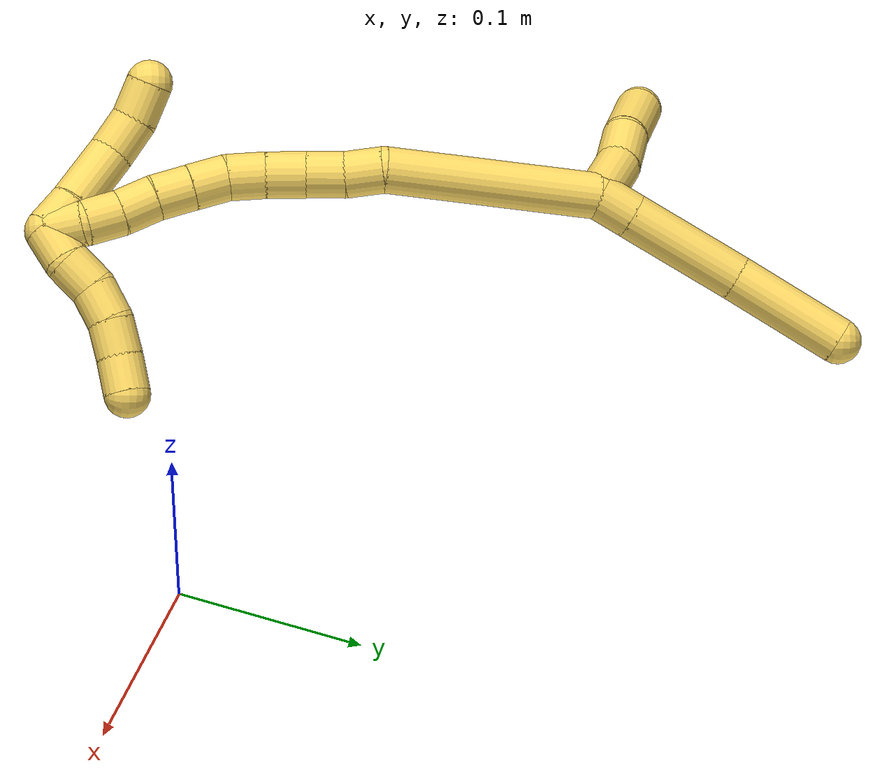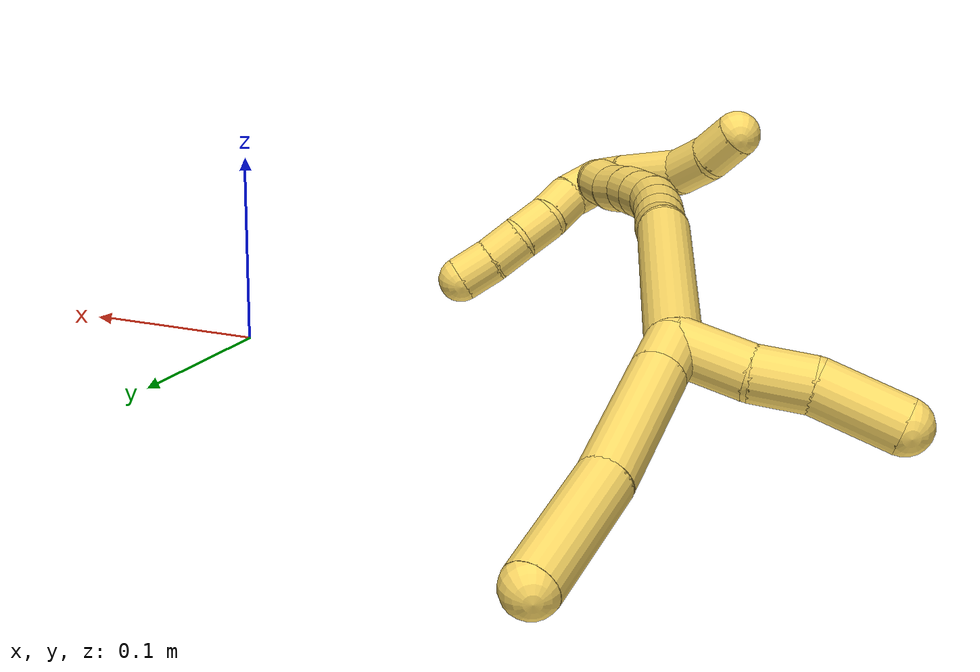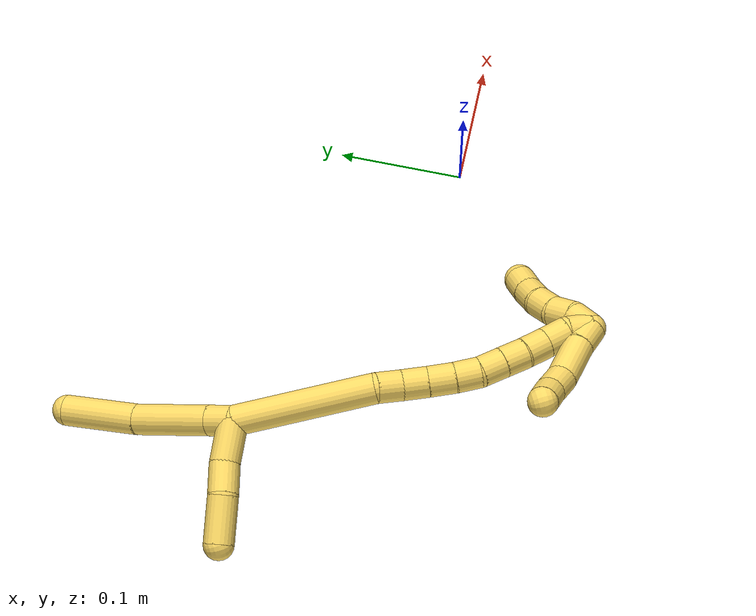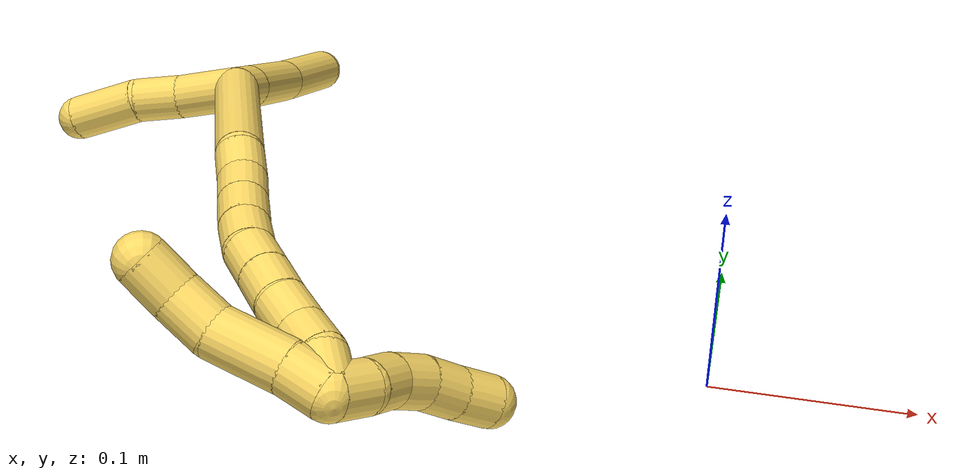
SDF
<sdf version="1.7">
 <world name="default">
  <model name="5">
   <static>0</static>
   <link name="5">
    <collision name="collision-cylinder-e_1_2_8">
     <pose>-0.004715 0.002525 0.008862 -0.277527 -0.472958 0.067288</pose>
     <geometry><cylinder><radius>0.0125</radius><length>0.020701</length></cylinder></geometry>
     <surface>
      <friction><ode><mu>1.16</mu><mu2>1.16</mu2><slip1>0</slip1><slip2>0</slip2></ode></friction>
      <contact><ode><kp>1e+06</kp><kd>1</kd><max_vel>0</max_vel><min_depth>0.001</min_depth></ode></contact>
     </surface>
    </collision>
    <visual name="visual-cylinder-e_1_2_8">
     <pose>-0.004715 0.002525 0.008862 -0.277527 -0.472958 0.067288</pose>
     <geometry><cylinder><radius>0.0125</radius><length>0.020701</length></cylinder></geometry>
     <material><ambient>1 0.858824 0.4 1</ambient></material>
    </visual>
    <collision name="collision-cylinder-e_2_8_9">
     <pose>-0.024202 0.012934 0.045692 -0.274791 -0.470323 0.066232</pose>
     <geometry><cylinder><radius>0.0125</radius><length>0.065194</length></cylinder></geometry>
     <surface>
      <friction><ode><mu>1.16</mu><mu2>1.16</mu2><slip1>0</slip1><slip2>0</slip2></ode></friction>
      <contact><ode><kp>1e+06</kp><kd>1</kd><max_vel>0</max_vel><min_depth>0.001</min_depth></ode></contact>
     </surface>
    </collision>
    <visual name="visual-cylinder-e_2_8_9">
     <pose>-0.024202 0.012934 0.045692 -0.274791 -0.470323 0.066232</pose>
     <geometry><cylinder><radius>0.0125</radius><length>0.065194</length></cylinder></geometry>
     <material><ambient>1 0.858824 0.4 1</ambient></material>
    </visual>
    <collision name="collision-cylinder-e_3_9_6">
     <pose>-0.052897 0.031758 0.100377 -0.388616 -0.449339 0.089884</pose>
     <geometry><cylinder><radius>0.0125</radius><length>0.064104</length></cylinder></geometry>
     <surface>
      <friction><ode><mu>1.16</mu><mu2>1.16</mu2><slip1>0</slip1><slip2>0</slip2></ode></friction>
      <contact><ode><kp>1e+06</kp><kd>1</kd><max_vel>0</max_vel><min_depth>0.001</min_depth></ode></contact>
     </surface>
    </collision>
    <visual name="visual-cylinder-e_3_9_6">
     <pose>-0.052897 0.031758 0.100377 -0.388616 -0.449339 0.089884</pose>
     <geometry><cylinder><radius>0.0125</radius><length>0.064104</length></cylinder></geometry>
     <material><ambient>1 0.858824 0.4 1</ambient></material>
    </visual>
    <collision name="collision-cylinder-e_1_2_10">
     <pose>0.003557 -0.015091 0.00779 1.09425 0.206436 0.126033</pose>
     <geometry><cylinder><radius>0.0125</radius><length>0.034703</length></cylinder></geometry>
     <surface>
      <friction><ode><mu>1.16</mu><mu2>1.16</mu2><slip1>0</slip1><slip2>0</slip2></ode></friction>
      <contact><ode><kp>1e+06</kp><kd>1</kd><max_vel>0</max_vel><min_depth>0.001</min_depth></ode></contact>
     </surface>
    </collision>
    <visual name="visual-cylinder-e_1_2_10">
     <pose>0.003557 -0.015091 0.00779 1.09425 0.206436 0.126033</pose>
     <geometry><cylinder><radius>0.0125</radius><length>0.034703</length></cylinder></geometry>
     <material><ambient>1 0.858824 0.4 1</ambient></material>
    </visual>
    <collision name="collision-cylinder-e_2_10_11">
     <pose>0.011594 -0.041875 0.019578 1.2414 0.347885 0.249957</pose>
     <geometry><cylinder><radius>0.0125</radius><length>0.02629</length></cylinder></geometry>
     <surface>
      <friction><ode><mu>1.16</mu><mu2>1.16</mu2><slip1>0</slip1><slip2>0</slip2></ode></friction>
      <contact><ode><kp>1e+06</kp><kd>1</kd><max_vel>0</max_vel><min_depth>0.001</min_depth></ode></contact>
     </surface>
    </collision>
    <visual name="visual-cylinder-e_2_10_11">
     <pose>0.011594 -0.041875 0.019578 1.2414 0.347885 0.249957</pose>
     <geometry><cylinder><radius>0.0125</radius><length>0.02629</length></cylinder></geometry>
     <material><ambient>1 0.858824 0.4 1</ambient></material>
    </visual>
    <collision name="collision-cylinder-e_3_11_5">
     <pose>0.01822 -0.071636 0.0306 1.2 0.110167 0.07541</pose>
     <geometry><cylinder><radius>0.0125</radius><length>0.039008</length></cylinder></geometry>
     <surface>
      <friction><ode><mu>1.16</mu><mu2>1.16</mu2><slip1>0</slip1><slip2>0</slip2></ode></friction>
      <contact><ode><kp>1e+06</kp><kd>1</kd><max_vel>0</max_vel><min_depth>0.001</min_depth></ode></contact>
     </surface>
    </collision>
    <visual name="visual-cylinder-e_3_11_5">
     <pose>0.01822 -0.071636 0.0306 1.2 0.110167 0.07541</pose>
     <geometry><cylinder><radius>0.0125</radius><length>0.039008</length></cylinder></geometry>
     <material><ambient>1 0.858824 0.4 1</ambient></material>
    </visual>
    <collision name="collision-cylinder-e_1_2_12">
     <pose>0.006146 -0.003039 -0.057709 3.08898 0.10596 2.22039</pose>
     <geometry><cylinder><radius>0.0125</radius><length>0.116229</length></cylinder></geometry>
     <surface>
      <friction><ode><mu>1.16</mu><mu2>1.16</mu2><slip1>0</slip1><slip2>0</slip2></ode></friction>
      <contact><ode><kp>1e+06</kp><kd>1</kd><max_vel>0</max_vel><min_depth>0.001</min_depth></ode></contact>
     </surface>
    </collision>
    <visual name="visual-cylinder-e_1_2_12">
     <pose>0.006146 -0.003039 -0.057709 3.08898 0.10596 2.22039</pose>
     <geometry><cylinder><radius>0.0125</radius><length>0.116229</length></cylinder></geometry>
     <material><ambient>1 0.858824 0.4 1</ambient></material>
    </visual>
    <collision name="collision-cylinder-e_2_12_13">
     <pose>0.010216 -0.007912 -0.125473 2.96121 -0.200406 -1.6765</pose>
     <geometry><cylinder><radius>0.0125</radius><length>0.020861</length></cylinder></geometry>
     <surface>
      <friction><ode><mu>1.16</mu><mu2>1.16</mu2><slip1>0</slip1><slip2>0</slip2></ode></friction>
      <contact><ode><kp>1e+06</kp><kd>1</kd><max_vel>0</max_vel><min_depth>0.001</min_depth></ode></contact>
     </surface>
    </collision>
    <visual name="visual-cylinder-e_2_12_13">
     <pose>0.010216 -0.007912 -0.125473 2.96121 -0.200406 -1.6765</pose>
     <geometry><cylinder><radius>0.0125</radius><length>0.020861</length></cylinder></geometry>
     <material><ambient>1 0.858824 0.4 1</ambient></material>
    </visual>
    <collision name="collision-cylinder-e_3_13_14">
     <pose>0.007571 -0.011364 -0.14581 2.98552 -0.054602 -0.671965</pose>
     <geometry><cylinder><radius>0.0125</radius><length>0.020847</length></cylinder></geometry>
     <surface>
      <friction><ode><mu>1.16</mu><mu2>1.16</mu2><slip1>0</slip1><slip2>0</slip2></ode></friction>
      <contact><ode><kp>1e+06</kp><kd>1</kd><max_vel>0</max_vel><min_depth>0.001</min_depth></ode></contact>
     </surface>
    </collision>
    <visual name="visual-cylinder-e_3_13_14">
     <pose>0.007571 -0.011364 -0.14581 2.98552 -0.054602 -0.671965</pose>
     <geometry><cylinder><radius>0.0125</radius><length>0.020847</length></cylinder></geometry>
     <material><ambient>1 0.858824 0.4 1</ambient></material>
    </visual>
    <collision name="collision-cylinder-e_4_14_15">
     <pose>0.006345 -0.014434 -0.166783 3.00653 -0.06084 -0.845566</pose>
     <geometry><cylinder><radius>0.0125</radius><length>0.02162</length></cylinder></geometry>
     <surface>
      <friction><ode><mu>1.16</mu><mu2>1.16</mu2><slip1>0</slip1><slip2>0</slip2></ode></friction>
      <contact><ode><kp>1e+06</kp><kd>1</kd><max_vel>0</max_vel><min_depth>0.001</min_depth></ode></contact>
     </surface>
    </collision>
    <visual name="visual-cylinder-e_4_14_15">
     <pose>0.006345 -0.014434 -0.166783 3.00653 -0.06084 -0.845566</pose>
     <geometry><cylinder><radius>0.0125</radius><length>0.02162</length></cylinder></geometry>
     <material><ambient>1 0.858824 0.4 1</ambient></material>
    </visual>
    <collision name="collision-cylinder-e_5_15_16">
     <pose>0.004748 -0.016593 -0.187628 3.07217 -0.092042 -1.8495</pose>
     <geometry><cylinder><radius>0.0125</radius><length>0.020442</length></cylinder></geometry>
     <surface>
      <friction><ode><mu>1.16</mu><mu2>1.16</mu2><slip1>0</slip1><slip2>0</slip2></ode></friction>
      <contact><ode><kp>1e+06</kp><kd>1</kd><max_vel>0</max_vel><min_depth>0.001</min_depth></ode></contact>
     </surface>
    </collision>
    <visual name="visual-cylinder-e_5_15_16">
     <pose>0.004748 -0.016593 -0.187628 3.07217 -0.092042 -1.8495</pose>
     <geometry><cylinder><radius>0.0125</radius><length>0.020442</length></cylinder></geometry>
     <material><ambient>1 0.858824 0.4 1</ambient></material>
    </visual>
    <collision name="collision-cylinder-e_6_16_17">
     <pose>0.001331 -0.016232 -0.20741 -3.03123 -0.250407 2.31449</pose>
     <geometry><cylinder><radius>0.0125</radius><length>0.02</length></cylinder></geometry>
     <surface>
      <friction><ode><mu>1.16</mu><mu2>1.16</mu2><slip1>0</slip1><slip2>0</slip2></ode></friction>
      <contact><ode><kp>1e+06</kp><kd>1</kd><max_vel>0</max_vel><min_depth>0.001</min_depth></ode></contact>
     </surface>
    </collision>
    <visual name="visual-cylinder-e_6_16_17">
     <pose>0.001331 -0.016232 -0.20741 -3.03123 -0.250407 2.31449</pose>
     <geometry><cylinder><radius>0.0125</radius><length>0.02</length></cylinder></geometry>
     <material><ambient>1 0.858824 0.4 1</ambient></material>
    </visual>
    <collision name="collision-cylinder-e_7_17_18">
     <pose>-0.003746 -0.014152 -0.226643 -3.03653 -0.262883 2.38454</pose>
     <geometry><cylinder><radius>0.0125</radius><length>0.020001</length></cylinder></geometry>
     <surface>
      <friction><ode><mu>1.16</mu><mu2>1.16</mu2><slip1>0</slip1><slip2>0</slip2></ode></friction>
      <contact><ode><kp>1e+06</kp><kd>1</kd><max_vel>0</max_vel><min_depth>0.001</min_depth></ode></contact>
     </surface>
    </collision>
    <visual name="visual-cylinder-e_7_17_18">
     <pose>-0.003746 -0.014152 -0.226643 -3.03653 -0.262883 2.38454</pose>
     <geometry><cylinder><radius>0.0125</radius><length>0.020001</length></cylinder></geometry>
     <material><ambient>1 0.858824 0.4 1</ambient></material>
    </visual>
    <collision name="collision-cylinder-e_8_18_19">
     <pose>-0.01005 -0.011678 -0.245419 -2.98362 -0.379534 2.35983</pose>
     <geometry><cylinder><radius>0.0125</radius><length>0.02</length></cylinder></geometry>
     <surface>
      <friction><ode><mu>1.16</mu><mu2>1.16</mu2><slip1>0</slip1><slip2>0</slip2></ode></friction>
      <contact><ode><kp>1e+06</kp><kd>1</kd><max_vel>0</max_vel><min_depth>0.001</min_depth></ode></contact>
     </surface>
    </collision>
    <visual name="visual-cylinder-e_8_18_19">
     <pose>-0.01005 -0.011678 -0.245419 -2.98362 -0.379534 2.35983</pose>
     <geometry><cylinder><radius>0.0125</radius><length>0.02</length></cylinder></geometry>
     <material><ambient>1 0.858824 0.4 1</ambient></material>
    </visual>
    <collision name="collision-cylinder-e_9_19_20">
     <pose>-0.016004 -0.008512 -0.264186 -2.96564 -0.226856 1.82389</pose>
     <geometry><cylinder><radius>0.0125</radius><length>0.020001</length></cylinder></geometry>
     <surface>
      <friction><ode><mu>1.16</mu><mu2>1.16</mu2><slip1>0</slip1><slip2>0</slip2></ode></friction>
      <contact><ode><kp>1e+06</kp><kd>1</kd><max_vel>0</max_vel><min_depth>0.001</min_depth></ode></contact>
     </surface>
    </collision>
    <visual name="visual-cylinder-e_9_19_20">
     <pose>-0.016004 -0.008512 -0.264186 -2.96564 -0.226856 1.82389</pose>
     <geometry><cylinder><radius>0.0125</radius><length>0.020001</length></cylinder></geometry>
     <material><ambient>1 0.858824 0.4 1</ambient></material>
    </visual>
    <collision name="collision-cylinder-e_10_20_1">
     <pose>-0.021012 -0.008314 -0.283272 2.98408 -0.27951 -2.11904</pose>
     <geometry><cylinder><radius>0.0125</radius><length>0.02</length></cylinder></geometry>
     <surface>
      <friction><ode><mu>1.16</mu><mu2>1.16</mu2><slip1>0</slip1><slip2>0</slip2></ode></friction>
      <contact><ode><kp>1e+06</kp><kd>1</kd><max_vel>0</max_vel><min_depth>0.001</min_depth></ode></contact>
     </surface>
    </collision>
    <visual name="visual-cylinder-e_10_20_1">
     <pose>-0.021012 -0.008314 -0.283272 2.98408 -0.27951 -2.11904</pose>
     <geometry><cylinder><radius>0.0125</radius><length>0.02</length></cylinder></geometry>
     <material><ambient>1 0.858824 0.4 1</ambient></material>
    </visual>
    <collision name="collision-cylinder-e_1_1_21">
     <pose>-0.017727 -0.014564 -0.286067 0.616089 0.634735 0.208265</pose>
     <geometry><cylinder><radius>0.0125</radius><length>0.020386</length></cylinder></geometry>
     <surface>
      <friction><ode><mu>1.16</mu><mu2>1.16</mu2><slip1>0</slip1><slip2>0</slip2></ode></friction>
      <contact><ode><kp>1e+06</kp><kd>1</kd><max_vel>0</max_vel><min_depth>0.001</min_depth></ode></contact>
     </surface>
    </collision>
    <visual name="visual-cylinder-e_1_1_21">
     <pose>-0.017727 -0.014564 -0.286067 0.616089 0.634735 0.208265</pose>
     <geometry><cylinder><radius>0.0125</radius><length>0.020386</length></cylinder></geometry>
     <material><ambient>1 0.858824 0.4 1</ambient></material>
    </visual>
    <collision name="collision-cylinder-e_2_21_22">
     <pose>-0.001199 -0.029456 -0.268666 0.758854 0.61794 0.253193</pose>
     <geometry><cylinder><radius>0.0125</radius><length>0.03619</length></cylinder></geometry>
     <surface>
      <friction><ode><mu>1.16</mu><mu2>1.16</mu2><slip1>0</slip1><slip2>0</slip2></ode></friction>
      <contact><ode><kp>1e+06</kp><kd>1</kd><max_vel>0</max_vel><min_depth>0.001</min_depth></ode></contact>
     </surface>
    </collision>
    <visual name="visual-cylinder-e_2_21_22">
     <pose>-0.001199 -0.029456 -0.268666 0.758854 0.61794 0.253193</pose>
     <geometry><cylinder><radius>0.0125</radius><length>0.03619</length></cylinder></geometry>
     <material><ambient>1 0.858824 0.4 1</ambient></material>
    </visual>
    <collision name="collision-cylinder-e_3_22_23">
     <pose>0.017796 -0.042956 -0.251608 0.485247 0.869651 0.22891</pose>
     <geometry><cylinder><radius>0.0125</radius><length>0.022277</length></cylinder></geometry>
     <surface>
      <friction><ode><mu>1.16</mu><mu2>1.16</mu2><slip1>0</slip1><slip2>0</slip2></ode></friction>
      <contact><ode><kp>1e+06</kp><kd>1</kd><max_vel>0</max_vel><min_depth>0.001</min_depth></ode></contact>
     </surface>
    </collision>
    <visual name="visual-cylinder-e_3_22_23">
     <pose>0.017796 -0.042956 -0.251608 0.485247 0.869651 0.22891</pose>
     <geometry><cylinder><radius>0.0125</radius><length>0.022277</length></cylinder></geometry>
     <material><ambient>1 0.858824 0.4 1</ambient></material>
    </visual>
    <collision name="collision-cylinder-e_4_23_4">
     <pose>0.035813 -0.048652 -0.241262 0.531274 1.11778 0.337074</pose>
     <geometry><cylinder><radius>0.0125</radius><length>0.021147</length></cylinder></geometry>
     <surface>
      <friction><ode><mu>1.16</mu><mu2>1.16</mu2><slip1>0</slip1><slip2>0</slip2></ode></friction>
      <contact><ode><kp>1e+06</kp><kd>1</kd><max_vel>0</max_vel><min_depth>0.001</min_depth></ode></contact>
     </surface>
    </collision>
    <visual name="visual-cylinder-e_4_23_4">
     <pose>0.035813 -0.048652 -0.241262 0.531274 1.11778 0.337074</pose>
     <geometry><cylinder><radius>0.0125</radius><length>0.021147</length></cylinder></geometry>
     <material><ambient>1 0.858824 0.4 1</ambient></material>
    </visual>
    <collision name="collision-cylinder-e_1_1_24">
     <pose>-0.030047 -0.003611 -0.288071 -0.92355 -0.678469 0.34768</pose>
     <geometry><cylinder><radius>0.0125</radius><length>0.02</length></cylinder></geometry>
     <surface>
      <friction><ode><mu>1.16</mu><mu2>1.16</mu2><slip1>0</slip1><slip2>0</slip2></ode></friction>
      <contact><ode><kp>1e+06</kp><kd>1</kd><max_vel>0</max_vel><min_depth>0.001</min_depth></ode></contact>
     </surface>
    </collision>
    <visual name="visual-cylinder-e_1_1_24">
     <pose>-0.030047 -0.003611 -0.288071 -0.92355 -0.678469 0.34768</pose>
     <geometry><cylinder><radius>0.0125</radius><length>0.02</length></cylinder></geometry>
     <material><ambient>1 0.858824 0.4 1</ambient></material>
    </visual>
    <collision name="collision-cylinder-e_2_24_25">
     <pose>-0.042435 0.006704 -0.276609 -0.545178 -0.657597 0.190179</pose>
     <geometry><cylinder><radius>0.0125</radius><length>0.02</length></cylinder></geometry>
     <surface>
      <friction><ode><mu>1.16</mu><mu2>1.16</mu2><slip1>0</slip1><slip2>0</slip2></ode></friction>
      <contact><ode><kp>1e+06</kp><kd>1</kd><max_vel>0</max_vel><min_depth>0.001</min_depth></ode></contact>
     </surface>
    </collision>
    <visual name="visual-cylinder-e_2_24_25">
     <pose>-0.042435 0.006704 -0.276609 -0.545178 -0.657597 0.190179</pose>
     <geometry><cylinder><radius>0.0125</radius><length>0.02</length></cylinder></geometry>
     <material><ambient>1 0.858824 0.4 1</ambient></material>
    </visual>
    <collision name="collision-cylinder-e_3_25_26">
     <pose>-0.055962 0.015925 -0.265501 -0.86722 -0.835285 0.405269</pose>
     <geometry><cylinder><radius>0.0125</radius><length>0.02</length></cylinder></geometry>
     <surface>
      <friction><ode><mu>1.16</mu><mu2>1.16</mu2><slip1>0</slip1><slip2>0</slip2></ode></friction>
      <contact><ode><kp>1e+06</kp><kd>1</kd><max_vel>0</max_vel><min_depth>0.001</min_depth></ode></contact>
     </surface>
    </collision>
    <visual name="visual-cylinder-e_3_25_26">
     <pose>-0.055962 0.015925 -0.265501 -0.86722 -0.835285 0.405269</pose>
     <geometry><cylinder><radius>0.0125</radius><length>0.02</length></cylinder></geometry>
     <material><ambient>1 0.858824 0.4 1</ambient></material>
    </visual>
    <collision name="collision-cylinder-e_4_26_27">
     <pose>-0.071899 0.025745 -0.25887 -1.11776 -1.02021 0.673178</pose>
     <geometry><cylinder><radius>0.0125</radius><length>0.02</length></cylinder></geometry>
     <surface>
      <friction><ode><mu>1.16</mu><mu2>1.16</mu2><slip1>0</slip1><slip2>0</slip2></ode></friction>
      <contact><ode><kp>1e+06</kp><kd>1</kd><max_vel>0</max_vel><min_depth>0.001</min_depth></ode></contact>
     </surface>
    </collision>
    <visual name="visual-cylinder-e_4_26_27">
     <pose>-0.071899 0.025745 -0.25887 -1.11776 -1.02021 0.673178</pose>
     <geometry><cylinder><radius>0.0125</radius><length>0.02</length></cylinder></geometry>
     <material><ambient>1 0.858824 0.4 1</ambient></material>
    </visual>
    <collision name="collision-cylinder-e_5_27_3">
     <pose>-0.088635 0.035896 -0.254887 -1.2694 -0.96384 0.735273</pose>
     <geometry><cylinder><radius>0.0125</radius><length>0.02</length></cylinder></geometry>
     <surface>
      <friction><ode><mu>1.16</mu><mu2>1.16</mu2><slip1>0</slip1><slip2>0</slip2></ode></friction>
      <contact><ode><kp>1e+06</kp><kd>1</kd><max_vel>0</max_vel><min_depth>0.001</min_depth></ode></contact>
     </surface>
    </collision>
    <visual name="visual-cylinder-e_5_27_3">
     <pose>-0.088635 0.035896 -0.254887 -1.2694 -0.96384 0.735273</pose>
     <geometry><cylinder><radius>0.0125</radius><length>0.02</length></cylinder></geometry>
     <material><ambient>1 0.858824 0.4 1</ambient></material>
    </visual>
    <collision name="collision-sphere-3">
     <pose>-0.096849 0.041342 -0.253194 0 -0 0</pose>
     <geometry><sphere><radius>0.0125</radius></sphere></geometry>
     <surface>
      <friction><ode><mu>1.16</mu><mu2>1.16</mu2><slip1>0</slip1><slip2>0</slip2></ode></friction>
      <contact><ode><kp>1e+06</kp><kd>1</kd><max_vel>0</max_vel><min_depth>0.001</min_depth></ode></contact>
     </surface>
    </collision>
    <visual name="visual-sphere-3">
     <pose>-0.096849 0.041342 -0.253194 0 -0 0</pose>
     <geometry><sphere><radius>0.0125</radius></sphere></geometry>
     <material><ambient>1 0.858824 0.4 1</ambient></material>
    </visual>
    <collision name="collision-sphere-27">
     <pose>-0.080421 0.030449 -0.25658 0 -0 0</pose>
     <geometry><sphere><radius>0.0125</radius></sphere></geometry>
     <surface>
      <friction><ode><mu>1.16</mu><mu2>1.16</mu2><slip1>0</slip1><slip2>0</slip2></ode></friction>
      <contact><ode><kp>1e+06</kp><kd>1</kd><max_vel>0</max_vel><min_depth>0.001</min_depth></ode></contact>
     </surface>
    </collision>
    <visual name="visual-sphere-27">
     <pose>-0.080421 0.030449 -0.25658 0 -0 0</pose>
     <geometry><sphere><radius>0.0125</radius></sphere></geometry>
     <material><ambient>1 0.858824 0.4 1</ambient></material>
    </visual>
    <collision name="collision-sphere-26">
     <pose>-0.063377 0.021041 -0.26116 0 -0 0</pose>
     <geometry><sphere><radius>0.0125</radius></sphere></geometry>
     <surface>
      <friction><ode><mu>1.16</mu><mu2>1.16</mu2><slip1>0</slip1><slip2>0</slip2></ode></friction>
      <contact><ode><kp>1e+06</kp><kd>1</kd><max_vel>0</max_vel><min_depth>0.001</min_depth></ode></contact>
     </surface>
    </collision>
    <visual name="visual-sphere-26">
     <pose>-0.063377 0.021041 -0.26116 0 -0 0</pose>
     <geometry><sphere><radius>0.0125</radius></sphere></geometry>
     <material><ambient>1 0.858824 0.4 1</ambient></material>
    </visual>
    <collision name="collision-sphere-25">
     <pose>-0.048547 0.010808 -0.269842 0 -0 0</pose>
     <geometry><sphere><radius>0.0125</radius></sphere></geometry>
     <surface>
      <friction><ode><mu>1.16</mu><mu2>1.16</mu2><slip1>0</slip1><slip2>0</slip2></ode></friction>
      <contact><ode><kp>1e+06</kp><kd>1</kd><max_vel>0</max_vel><min_depth>0.001</min_depth></ode></contact>
     </surface>
    </collision>
    <visual name="visual-sphere-25">
     <pose>-0.048547 0.010808 -0.269842 0 -0 0</pose>
     <geometry><sphere><radius>0.0125</radius></sphere></geometry>
     <material><ambient>1 0.858824 0.4 1</ambient></material>
    </visual>
    <collision name="collision-sphere-24">
     <pose>-0.036323 0.0026 -0.283376 0 -0 0</pose>
     <geometry><sphere><radius>0.0125</radius></sphere></geometry>
     <surface>
      <friction><ode><mu>1.16</mu><mu2>1.16</mu2><slip1>0</slip1><slip2>0</slip2></ode></friction>
      <contact><ode><kp>1e+06</kp><kd>1</kd><max_vel>0</max_vel><min_depth>0.001</min_depth></ode></contact>
     </surface>
    </collision>
    <visual name="visual-sphere-24">
     <pose>-0.036323 0.0026 -0.283376 0 -0 0</pose>
     <geometry><sphere><radius>0.0125</radius></sphere></geometry>
     <material><ambient>1 0.858824 0.4 1</ambient></material>
    </visual>
    <collision name="collision-sphere-4">
     <pose>0.04532 -0.050996 -0.237272 0 -0 0</pose>
     <geometry><sphere><radius>0.0125</radius></sphere></geometry>
     <surface>
      <friction><ode><mu>1.16</mu><mu2>1.16</mu2><slip1>0</slip1><slip2>0</slip2></ode></friction>
      <contact><ode><kp>1e+06</kp><kd>1</kd><max_vel>0</max_vel><min_depth>0.001</min_depth></ode></contact>
     </surface>
    </collision>
    <visual name="visual-sphere-4">
     <pose>0.04532 -0.050996 -0.237272 0 -0 0</pose>
     <geometry><sphere><radius>0.0125</radius></sphere></geometry>
     <material><ambient>1 0.858824 0.4 1</ambient></material>
    </visual>
    <collision name="collision-sphere-23">
     <pose>0.026307 -0.046307 -0.245252 0 -0 0</pose>
     <geometry><sphere><radius>0.0125</radius></sphere></geometry>
     <surface>
      <friction><ode><mu>1.16</mu><mu2>1.16</mu2><slip1>0</slip1><slip2>0</slip2></ode></friction>
      <contact><ode><kp>1e+06</kp><kd>1</kd><max_vel>0</max_vel><min_depth>0.001</min_depth></ode></contact>
     </surface>
    </collision>
    <visual name="visual-sphere-23">
     <pose>0.026307 -0.046307 -0.245252 0 -0 0</pose>
     <geometry><sphere><radius>0.0125</radius></sphere></geometry>
     <material><ambient>1 0.858824 0.4 1</ambient></material>
    </visual>
    <collision name="collision-sphere-22">
     <pose>0.009285 -0.039604 -0.257964 0 -0 0</pose>
     <geometry><sphere><radius>0.0125</radius></sphere></geometry>
     <surface>
      <friction><ode><mu>1.16</mu><mu2>1.16</mu2><slip1>0</slip1><slip2>0</slip2></ode></friction>
      <contact><ode><kp>1e+06</kp><kd>1</kd><max_vel>0</max_vel><min_depth>0.001</min_depth></ode></contact>
     </surface>
    </collision>
    <visual name="visual-sphere-22">
     <pose>0.009285 -0.039604 -0.257964 0 -0 0</pose>
     <geometry><sphere><radius>0.0125</radius></sphere></geometry>
     <material><ambient>1 0.858824 0.4 1</ambient></material>
    </visual>
    <collision name="collision-sphere-21">
     <pose>-0.011682 -0.019307 -0.279368 0 -0 0</pose>
     <geometry><sphere><radius>0.0125</radius></sphere></geometry>
     <surface>
      <friction><ode><mu>1.16</mu><mu2>1.16</mu2><slip1>0</slip1><slip2>0</slip2></ode></friction>
      <contact><ode><kp>1e+06</kp><kd>1</kd><max_vel>0</max_vel><min_depth>0.001</min_depth></ode></contact>
     </surface>
    </collision>
    <visual name="visual-sphere-21">
     <pose>-0.011682 -0.019307 -0.279368 0 -0 0</pose>
     <geometry><sphere><radius>0.0125</radius></sphere></geometry>
     <material><ambient>1 0.858824 0.4 1</ambient></material>
    </visual>
    <collision name="collision-sphere-1">
     <pose>-0.023771 -0.009822 -0.292765 0 -0 0</pose>
     <geometry><sphere><radius>0.0125</radius></sphere></geometry>
     <surface>
      <friction><ode><mu>1.16</mu><mu2>1.16</mu2><slip1>0</slip1><slip2>0</slip2></ode></friction>
      <contact><ode><kp>1e+06</kp><kd>1</kd><max_vel>0</max_vel><min_depth>0.001</min_depth></ode></contact>
     </surface>
    </collision>
    <visual name="visual-sphere-1">
     <pose>-0.023771 -0.009822 -0.292765 0 -0 0</pose>
     <geometry><sphere><radius>0.0125</radius></sphere></geometry>
     <material><ambient>1 0.858824 0.4 1</ambient></material>
    </visual>
    <collision name="collision-sphere-11">
     <pose>0.016076 -0.053568 0.023575 0 -0 0</pose>
     <geometry><sphere><radius>0.0125</radius></sphere></geometry>
     <surface>
      <friction><ode><mu>1.16</mu><mu2>1.16</mu2><slip1>0</slip1><slip2>0</slip2></ode></friction>
      <contact><ode><kp>1e+06</kp><kd>1</kd><max_vel>0</max_vel><min_depth>0.001</min_depth></ode></contact>
     </surface>
    </collision>
    <visual name="visual-sphere-11">
     <pose>0.016076 -0.053568 0.023575 0 -0 0</pose>
     <geometry><sphere><radius>0.0125</radius></sphere></geometry>
     <material><ambient>1 0.858824 0.4 1</ambient></material>
    </visual>
    <collision name="collision-sphere-10">
     <pose>0.007113 -0.030181 0.015581 0 -0 0</pose>
     <geometry><sphere><radius>0.0125</radius></sphere></geometry>
     <surface>
      <friction><ode><mu>1.16</mu><mu2>1.16</mu2><slip1>0</slip1><slip2>0</slip2></ode></friction>
      <contact><ode><kp>1e+06</kp><kd>1</kd><max_vel>0</max_vel><min_depth>0.001</min_depth></ode></contact>
     </surface>
    </collision>
    <visual name="visual-sphere-10">
     <pose>0.007113 -0.030181 0.015581 0 -0 0</pose>
     <geometry><sphere><radius>0.0125</radius></sphere></geometry>
     <material><ambient>1 0.858824 0.4 1</ambient></material>
    </visual>
    <collision name="collision-sphere-6">
     <pose>-0.066819 0.042697 0.127094 0 -0 0</pose>
     <geometry><sphere><radius>0.0125</radius></sphere></geometry>
     <surface>
      <friction><ode><mu>1.16</mu><mu2>1.16</mu2><slip1>0</slip1><slip2>0</slip2></ode></friction>
      <contact><ode><kp>1e+06</kp><kd>1</kd><max_vel>0</max_vel><min_depth>0.001</min_depth></ode></contact>
     </surface>
    </collision>
    <visual name="visual-sphere-6">
     <pose>-0.066819 0.042697 0.127094 0 -0 0</pose>
     <geometry><sphere><radius>0.0125</radius></sphere></geometry>
     <material><ambient>1 0.858824 0.4 1</ambient></material>
    </visual>
    <collision name="collision-sphere-9">
     <pose>-0.038974 0.020819 0.073659 0 -0 0</pose>
     <geometry><sphere><radius>0.0125</radius></sphere></geometry>
     <surface>
      <friction><ode><mu>1.16</mu><mu2>1.16</mu2><slip1>0</slip1><slip2>0</slip2></ode></friction>
      <contact><ode><kp>1e+06</kp><kd>1</kd><max_vel>0</max_vel><min_depth>0.001</min_depth></ode></contact>
     </surface>
    </collision>
    <visual name="visual-sphere-9">
     <pose>-0.038974 0.020819 0.073659 0 -0 0</pose>
     <geometry><sphere><radius>0.0125</radius></sphere></geometry>
     <material><ambient>1 0.858824 0.4 1</ambient></material>
    </visual>
    <collision name="collision-sphere-2">
     <geometry><sphere><radius>0.0125</radius></sphere></geometry>
     <surface>
      <friction><ode><mu>1.16</mu><mu2>1.16</mu2><slip1>0</slip1><slip2>0</slip2></ode></friction>
      <contact><ode><kp>1e+06</kp><kd>1</kd><max_vel>0</max_vel><min_depth>0.001</min_depth></ode></contact>
     </surface>
    </collision>
    <visual name="visual-sphere-2">
     <geometry><sphere><radius>0.0125</radius></sphere></geometry>
     <material><ambient>1 0.858824 0.4 1</ambient></material>
    </visual>
    <collision name="collision-sphere-19">
     <pose>-0.013755 -0.010217 -0.254592 0 -0 0</pose>
     <geometry><sphere><radius>0.0125</radius></sphere></geometry>
     <surface>
      <friction><ode><mu>1.16</mu><mu2>1.16</mu2><slip1>0</slip1><slip2>0</slip2></ode></friction>
      <contact><ode><kp>1e+06</kp><kd>1</kd><max_vel>0</max_vel><min_depth>0.001</min_depth></ode></contact>
     </surface>
    </collision>
    <visual name="visual-sphere-19">
     <pose>-0.013755 -0.010217 -0.254592 0 -0 0</pose>
     <geometry><sphere><radius>0.0125</radius></sphere></geometry>
     <material><ambient>1 0.858824 0.4 1</ambient></material>
    </visual>
    <collision name="collision-sphere-8">
     <pose>-0.00943 0.005049 0.017724 0 -0 0</pose>
     <geometry><sphere><radius>0.0125</radius></sphere></geometry>
     <surface>
      <friction><ode><mu>1.16</mu><mu2>1.16</mu2><slip1>0</slip1><slip2>0</slip2></ode></friction>
      <contact><ode><kp>1e+06</kp><kd>1</kd><max_vel>0</max_vel><min_depth>0.001</min_depth></ode></contact>
     </surface>
    </collision>
    <visual name="visual-sphere-8">
     <pose>-0.00943 0.005049 0.017724 0 -0 0</pose>
     <geometry><sphere><radius>0.0125</radius></sphere></geometry>
     <material><ambient>1 0.858824 0.4 1</ambient></material>
    </visual>
    <collision name="collision-sphere-5">
     <pose>0.020364 -0.089704 0.037624 0 -0 0</pose>
     <geometry><sphere><radius>0.0125</radius></sphere></geometry>
     <surface>
      <friction><ode><mu>1.16</mu><mu2>1.16</mu2><slip1>0</slip1><slip2>0</slip2></ode></friction>
      <contact><ode><kp>1e+06</kp><kd>1</kd><max_vel>0</max_vel><min_depth>0.001</min_depth></ode></contact>
     </surface>
    </collision>
    <visual name="visual-sphere-5">
     <pose>0.020364 -0.089704 0.037624 0 -0 0</pose>
     <geometry><sphere><radius>0.0125</radius></sphere></geometry>
     <material><ambient>1 0.858824 0.4 1</ambient></material>
    </visual>
    <collision name="collision-sphere-12">
     <pose>0.012293 -0.006078 -0.115417 0 -0 0</pose>
     <geometry><sphere><radius>0.0125</radius></sphere></geometry>
     <surface>
      <friction><ode><mu>1.16</mu><mu2>1.16</mu2><slip1>0</slip1><slip2>0</slip2></ode></friction>
      <contact><ode><kp>1e+06</kp><kd>1</kd><max_vel>0</max_vel><min_depth>0.001</min_depth></ode></contact>
     </surface>
    </collision>
    <visual name="visual-sphere-12">
     <pose>0.012293 -0.006078 -0.115417 0 -0 0</pose>
     <geometry><sphere><radius>0.0125</radius></sphere></geometry>
     <material><ambient>1 0.858824 0.4 1</ambient></material>
    </visual>
    <collision name="collision-sphere-13">
     <pose>0.00814 -0.009746 -0.135529 0 -0 0</pose>
     <geometry><sphere><radius>0.0125</radius></sphere></geometry>
     <surface>
      <friction><ode><mu>1.16</mu><mu2>1.16</mu2><slip1>0</slip1><slip2>0</slip2></ode></friction>
      <contact><ode><kp>1e+06</kp><kd>1</kd><max_vel>0</max_vel><min_depth>0.001</min_depth></ode></contact>
     </surface>
    </collision>
    <visual name="visual-sphere-13">
     <pose>0.00814 -0.009746 -0.135529 0 -0 0</pose>
     <geometry><sphere><radius>0.0125</radius></sphere></geometry>
     <material><ambient>1 0.858824 0.4 1</ambient></material>
    </visual>
    <collision name="collision-sphere-14">
     <pose>0.007002 -0.012981 -0.156091 0 -0 0</pose>
     <geometry><sphere><radius>0.0125</radius></sphere></geometry>
     <surface>
      <friction><ode><mu>1.16</mu><mu2>1.16</mu2><slip1>0</slip1><slip2>0</slip2></ode></friction>
      <contact><ode><kp>1e+06</kp><kd>1</kd><max_vel>0</max_vel><min_depth>0.001</min_depth></ode></contact>
     </surface>
    </collision>
    <visual name="visual-sphere-14">
     <pose>0.007002 -0.012981 -0.156091 0 -0 0</pose>
     <geometry><sphere><radius>0.0125</radius></sphere></geometry>
     <material><ambient>1 0.858824 0.4 1</ambient></material>
    </visual>
    <collision name="collision-sphere-15">
     <pose>0.005688 -0.015887 -0.177475 0 -0 0</pose>
     <geometry><sphere><radius>0.0125</radius></sphere></geometry>
     <surface>
      <friction><ode><mu>1.16</mu><mu2>1.16</mu2><slip1>0</slip1><slip2>0</slip2></ode></friction>
      <contact><ode><kp>1e+06</kp><kd>1</kd><max_vel>0</max_vel><min_depth>0.001</min_depth></ode></contact>
     </surface>
    </collision>
    <visual name="visual-sphere-15">
     <pose>0.005688 -0.015887 -0.177475 0 -0 0</pose>
     <geometry><sphere><radius>0.0125</radius></sphere></geometry>
     <material><ambient>1 0.858824 0.4 1</ambient></material>
    </visual>
    <collision name="collision-sphere-16">
     <pose>0.003809 -0.017299 -0.197781 0 -0 0</pose>
     <geometry><sphere><radius>0.0125</radius></sphere></geometry>
     <surface>
      <friction><ode><mu>1.16</mu><mu2>1.16</mu2><slip1>0</slip1><slip2>0</slip2></ode></friction>
      <contact><ode><kp>1e+06</kp><kd>1</kd><max_vel>0</max_vel><min_depth>0.001</min_depth></ode></contact>
     </surface>
    </collision>
    <visual name="visual-sphere-16">
     <pose>0.003809 -0.017299 -0.197781 0 -0 0</pose>
     <geometry><sphere><radius>0.0125</radius></sphere></geometry>
     <material><ambient>1 0.858824 0.4 1</ambient></material>
    </visual>
    <collision name="collision-sphere-17">
     <pose>-0.001147 -0.015165 -0.21704 0 -0 0</pose>
     <geometry><sphere><radius>0.0125</radius></sphere></geometry>
     <surface>
      <friction><ode><mu>1.16</mu><mu2>1.16</mu2><slip1>0</slip1><slip2>0</slip2></ode></friction>
      <contact><ode><kp>1e+06</kp><kd>1</kd><max_vel>0</max_vel><min_depth>0.001</min_depth></ode></contact>
     </surface>
    </collision>
    <visual name="visual-sphere-17">
     <pose>-0.001147 -0.015165 -0.21704 0 -0 0</pose>
     <geometry><sphere><radius>0.0125</radius></sphere></geometry>
     <material><ambient>1 0.858824 0.4 1</ambient></material>
    </visual>
    <collision name="collision-sphere-18">
     <pose>-0.006345 -0.01314 -0.236247 0 -0 0</pose>
     <geometry><sphere><radius>0.0125</radius></sphere></geometry>
     <surface>
      <friction><ode><mu>1.16</mu><mu2>1.16</mu2><slip1>0</slip1><slip2>0</slip2></ode></friction>
      <contact><ode><kp>1e+06</kp><kd>1</kd><max_vel>0</max_vel><min_depth>0.001</min_depth></ode></contact>
     </surface>
    </collision>
    <visual name="visual-sphere-18">
     <pose>-0.006345 -0.01314 -0.236247 0 -0 0</pose>
     <geometry><sphere><radius>0.0125</radius></sphere></geometry>
     <material><ambient>1 0.858824 0.4 1</ambient></material>
    </visual>
    <collision name="collision-sphere-20">
     <pose>-0.018253 -0.006806 -0.273779 0 -0 0</pose>
     <geometry><sphere><radius>0.0125</radius></sphere></geometry>
     <surface>
      <friction><ode><mu>1.16</mu><mu2>1.16</mu2><slip1>0</slip1><slip2>0</slip2></ode></friction>
      <contact><ode><kp>1e+06</kp><kd>1</kd><max_vel>0</max_vel><min_depth>0.001</min_depth></ode></contact>
     </surface>
    </collision>
    <visual name="visual-sphere-20">
     <pose>-0.018253 -0.006806 -0.273779 0 -0 0</pose>
     <geometry><sphere><radius>0.0125</radius></sphere></geometry>
     <material><ambient>1 0.858824 0.4 1</ambient></material>
    </visual>
    <inertial>
     <pose>-0.011504 -0.007743 -0.114547 0 -0 0</pose>
     <mass>0.75</mass>
     <inertia><ixx>9.6e-05</ixx><ixy>0</ixy><ixz>0</ixz><iyy>0.000265</iyy><iyz>0</iyz><izz>1e-05</izz></inertia>
    </inertial>
   </link>
   <pose>-0.284207 0.12706 0.067201 1.83568 -1.1052 -2.90826</pose>
  </model>
 </world>
</sdf>
